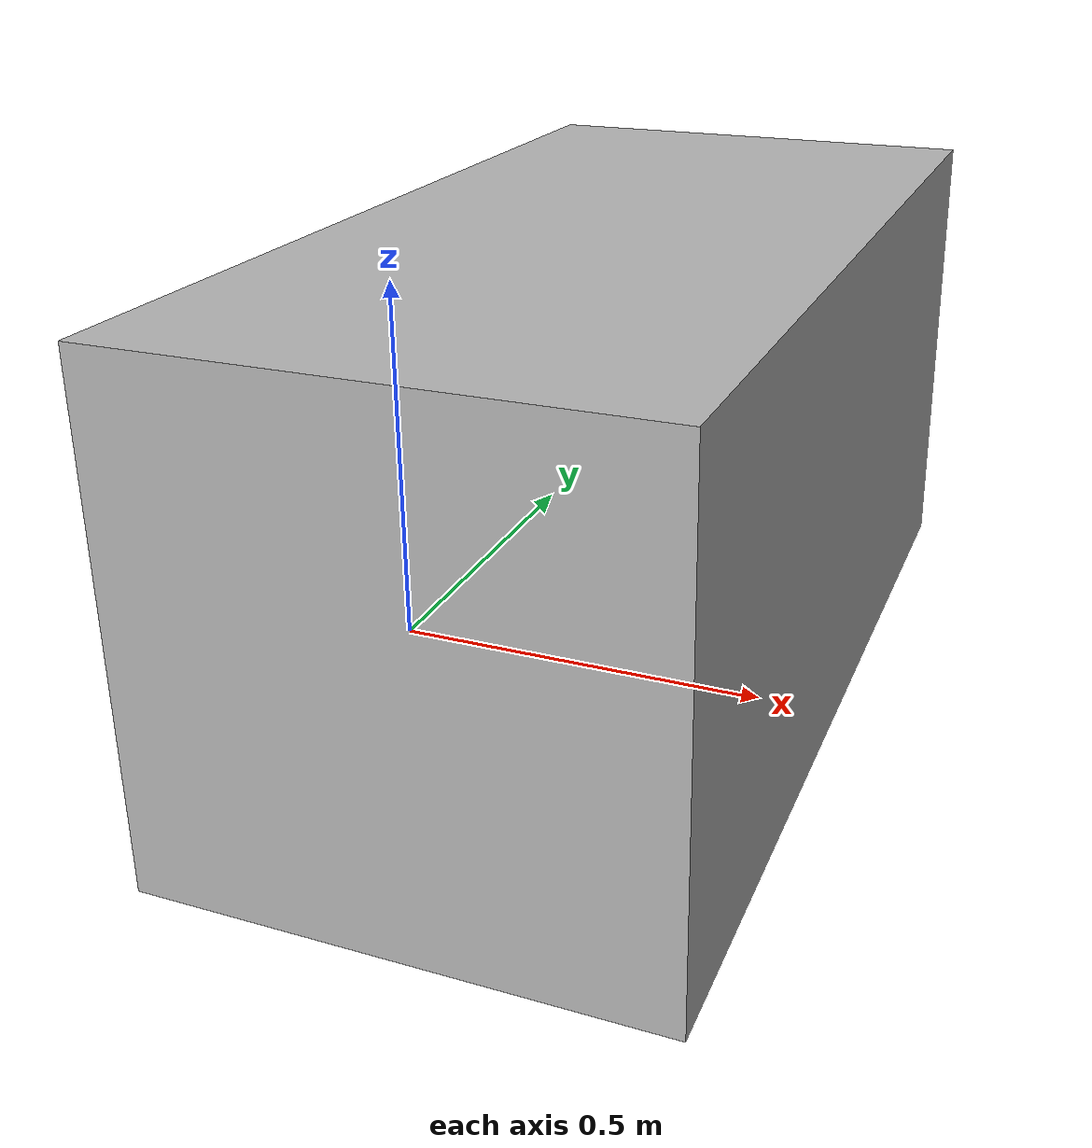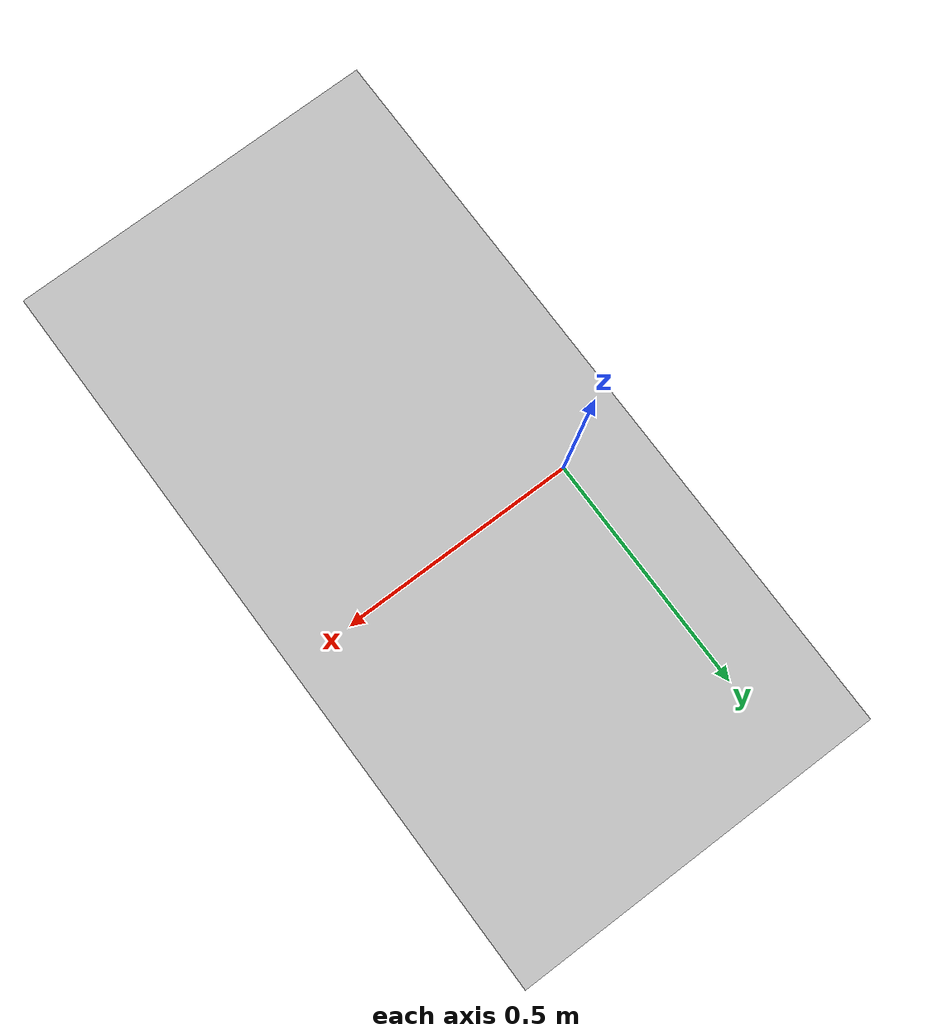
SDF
<?xml version='1.0'?>
<sdf version='1.6'>
  <model name='terrain-step_600'>
    <static>true</static>
    <link name='base_link'>
      <pose frame=''>0 0 0 0 -0 0</pose>
      <inertial>
        <pose frame=''>0.3 -0 0.3 0 -0 0</pose>
        <mass>432</mass>
        <inertia>
          <ixx>16.907</ixx>
          <ixy>-2.08</ixy>
          <ixz>-2.8758e-15</ixz>
          <iyy>25.44</iyy>
          <iyz>1.3047e-15</iyz>
          <izz>16.427</izz>
        </inertia>
      </inertial>
      <collision name='base_link_collision'>
        <pose frame=''>0 0 0 0 -0 0</pose>
        <geometry>
          <mesh>
            <scale>1 1 1</scale>
            <uri>model://terrain-step_600/meshes/base_link.STL</uri>
          </mesh>
        </geometry>
        <surface>
          <contact>
            <collide_bitmask>65535</collide_bitmask>
            <ode/>
          </contact>
          <friction>
            <ode>
              <mu>2</mu>
              <mu2>2</mu2>
            </ode>
            <torsional>
              <ode/>
            </torsional>
          </friction>
          <bounce/>
        </surface>
      </collision>
      <visual name='base_link_visual'>
        <pose frame=''>0 0 0 0 -0 0</pose>
        <geometry>
          <mesh>
            <scale>1 1 1</scale>
            <uri>model://terrain-step_600/meshes/base_link.dae</uri>
          </mesh>
        </geometry>
      </visual>
    </link>
  </model>
</sdf>
